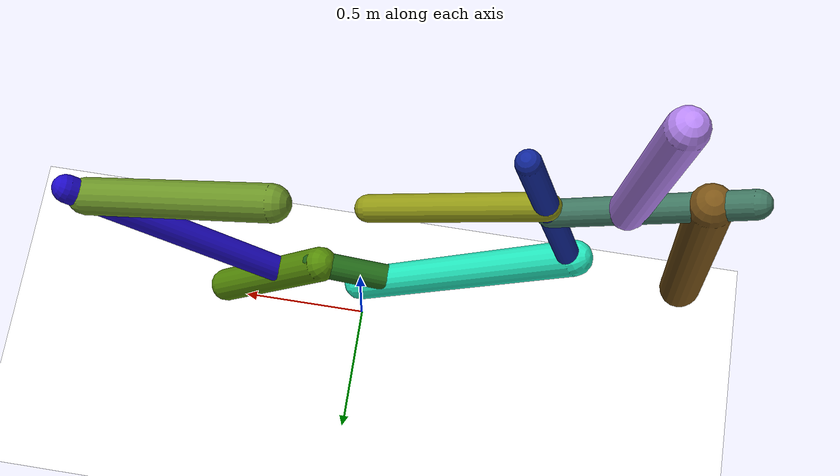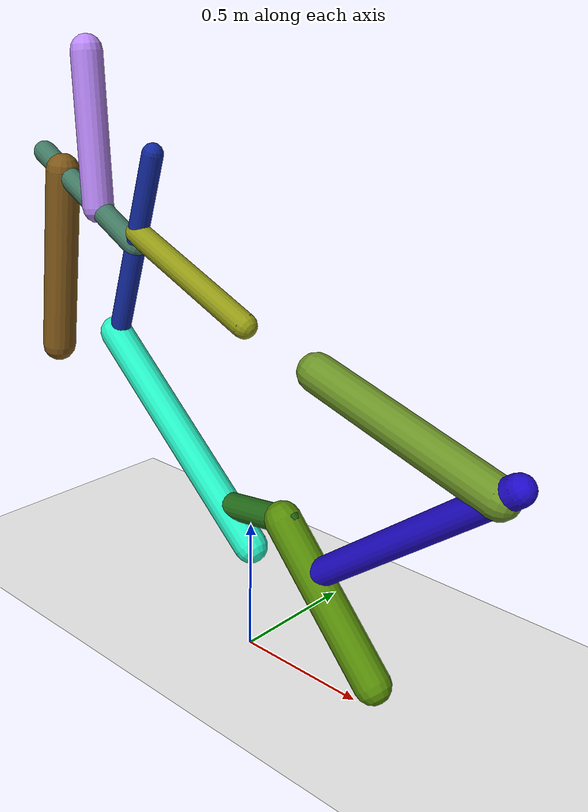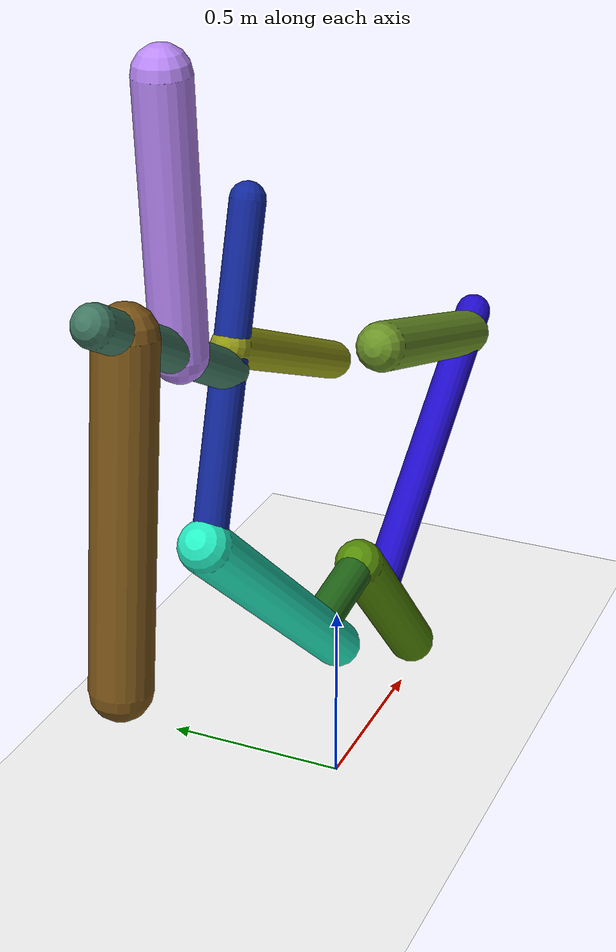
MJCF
<mujoco model="morphology">
  <option timestep="0.01"/>
  <default>
    <default class="/"/>
    <default class="0/"/>
    <default class="0/1/"/>
    <default class="0/1/2/"/>
    <default class="0/1/2/3/"/>
    <default class="0/1/2/3/4/"/>
    <default class="0/5/"/>
    <default class="0/5/6/"/>
    <default class="0/5/7/"/>
    <default class="0/5/7/8/"/>
    <default class="0/5/7/9/"/>
  </default>
  <asset>
    <texture name="texplane" type="2d" builtin="checker" rgb1="0.10000000000000001 0.20000000000000001 0.29999999999999999" rgb2="0.20000000000000001 0.29999999999999999 0.40000000000000002" width="300" height="300"/>
    <material name="MatPlane" class="/" texture="texplane" texrepeat="20 20" specular="1" shininess="1" reflectance="0.5"/>
  </asset>
  <worldbody>
    <light name="//unnamed_light_0" class="/" directional="true" pos="0 0 1.5" dir="0 0 -1.3" cutoff="100" exponent="1" diffuse="1 1 1" specular="0.10000000000000001 0.10000000000000001 0.10000000000000001"/>
    <geom name="ground" class="/" type="plane" size="15 15 0.5" material="MatPlane" rgba="1 1 1 1"/>
    <site name="body" class="/" size="9.9999999999999995e-07 9.9999999999999995e-07 9.9999999999999995e-07" pos="0 0 0.41095951795578001"/>
    <body pos="0 0 0.41095951795578001" name="0/">
      <joint name="0/rootx/" class="/" type="slide" axis="1 0 0" limited="false" stiffness="0" armature="0" damping="0"/>
      <joint name="0/rootz/" class="/" type="slide" axis="0 0 1" limited="false" stiffness="0" armature="0" damping="0"/>
      <joint name="0/rooty/" class="/" type="hinge" axis="0 1 0" limited="false" stiffness="0" armature="0" damping="0"/>
      <geom name="0/geom" class="0/" type="capsule" contype="1" conaffinity="1" condim="3" size="0.062956500481664665" rgba="0.14113276358911919 0.93089905258874517 0.76350924336121073 1" friction="0.59999999999999998 0.10000000000000001 0.10000000000000001" fromto="0 0 0 -0.74456022781224074 0 0.66722961272208714"/>
      <site name="0/end0" class="0/" size="0.0050000000000000001" pos="-0.74456022781224074 0 0.66722961272208714"/>
      <site name="0/attach1" class="0/" size="9.9999999999999995e-07 9.9999999999999995e-07 9.9999999999999995e-07" pos="-0.13861695404890692 0 0.12422008739109147"/>
      <body pos="-0.13861695404890692 0 0.12422008739109147" name="0/1/">
        <joint name="0/1/joint/" class="0/" type="hinge" axis="0 1 0" limited="true" range="-69.483749315230654 69.483749315230654"/>
        <geom name="0/1/geom" class="0/1/" type="capsule" contype="1" conaffinity="1" condim="3" size="0.05043938425670335" rgba="0.13326937277816187 0.4118402598487183 0.095656662221314637 1" friction="0.59999999999999998 0.10000000000000001 0.10000000000000001" fromto="0 0 0 0.31608144088195989 0 0.043691357026150235"/>
        <site name="0/1/end1" class="0/1/" size="0.0050000000000000001" pos="0.31608144088195989 0 0.043691357026150235"/>
        <site name="0/1/attach2" class="0/1/" size="9.9999999999999995e-07 9.9999999999999995e-07 9.9999999999999995e-07" pos="0.29413654741688255 0 0.040657954708670958"/>
        <body pos="0.29413654741688255 0 0.040657954708670958" name="0/1/2/">
          <joint name="0/1/2/joint/" class="0/1/" type="hinge" axis="0 1 0" limited="true" range="-46.087578845522337 46.087578845522337"/>
          <geom name="0/1/2/geom" class="0/1/2/" type="capsule" contype="1" conaffinity="1" condim="3" size="0.067539475685437778" rgba="0.33038472623242643 0.54258951318476056 0.027749723382355151 1" friction="0.59999999999999998 0.10000000000000001 0.10000000000000001" fromto="0 0 0 0.42060808590088183 0 -0.47583756441670844"/>
          <site name="0/1/2/end2" class="0/1/2/" size="0.0050000000000000001" pos="0.42060808590088183 0 -0.47583756441670844"/>
          <site name="0/1/2/attach3" class="0/1/2/" size="9.9999999999999995e-07 9.9999999999999995e-07 9.9999999999999995e-07" pos="0.14672000902209775 0 -0.16598561483842864"/>
          <body pos="0.14672000902209775 0 -0.16598561483842864" name="0/1/2/3/">
            <geom name="0/1/2/3/geom" class="0/1/2/3/" type="capsule" contype="1" conaffinity="1" condim="3" size="0.051471744362881544" rgba="0.11895930715346126 0.037078763212451848 0.77756299366759907 1" friction="0.59999999999999998 0.10000000000000001 0.10000000000000001" fromto="0 0 0 0.7488762877547126 0 0.58058487383785207"/>
            <site name="0/1/2/3/end3" class="0/1/2/3/" size="0.0050000000000000001" pos="0.7488762877547126 0 0.58058487383785207"/>
            <site name="0/1/2/3/attach4" class="0/1/2/3/" size="9.9999999999999995e-07 9.9999999999999995e-07 9.9999999999999995e-07" pos="0.68835283822233773 0 0.53366257186947286"/>
            <body pos="0.68835283822233773 0 0.53366257186947286" name="0/1/2/3/4/">
              <joint name="0/1/2/3/4/joint/" class="0/1/2/3/" type="hinge" axis="0 1 0" limited="true" range="-58.316595413610948 58.316595413610948"/>
              <geom name="0/1/2/3/4/geom" class="0/1/2/3/4/" type="capsule" contype="1" conaffinity="1" condim="3" size="0.06802640457381734" rgba="0.41581900036230846 0.57206715845312039 0.14804160619001394 1" friction="0.59999999999999998 0.10000000000000001 0.10000000000000001" fromto="0 0 0 -0.69509185748097968 0 0.2158043833467953"/>
              <site name="0/1/2/3/4/end4" class="0/1/2/3/4/" size="0.0050000000000000001" pos="-0.69509185748097968 0 0.2158043833467953"/>
            </body>
          </body>
        </body>
      </body>
      <site name="0/attach5" class="0/" size="9.9999999999999995e-07 9.9999999999999995e-07 9.9999999999999995e-07" pos="-0.7300437467174532 0 0.65422082485354538"/>
      <body pos="-0.7300437467174532 0 0.65422082485354538" name="0/5/">
        <joint name="0/5/joint/" class="0/" type="hinge" axis="0 1 0" limited="true" range="-45.287361015347216 45.287361015347216"/>
        <geom name="0/5/geom" class="0/5/" type="capsule" contype="1" conaffinity="1" condim="3" size="0.04065705984360786" rgba="0.066923739370816082 0.15423892872766465 0.61068678557843459 1" friction="0.59999999999999998 0.10000000000000001 0.10000000000000001" fromto="0 0 0 0.23340034871429105 0 0.73174038397981533"/>
        <site name="0/5/end5" class="0/5/" size="0.0050000000000000001" pos="0.23340034871429105 0 0.73174038397981533"/>
        <site name="0/5/attach6" class="0/5/" size="9.9999999999999995e-07 9.9999999999999995e-07 9.9999999999999995e-07" pos="0.13739510875244282 0 0.43075149711335931"/>
        <body pos="0.13739510875244282 0 0.43075149711335931" name="0/5/6/">
          <joint name="0/5/6/joint/" class="0/5/" type="hinge" axis="0 1 0" limited="true" range="-34.045308597937812 34.045308597937812"/>
          <geom name="0/5/6/geom" class="0/5/6/" type="capsule" contype="1" conaffinity="1" condim="3" size="0.046752838327639122" rgba="0.56820923546314139 0.59248051290726622 0.080254539839291206 1" friction="0.59999999999999998 0.10000000000000001 0.10000000000000001" fromto="0 0 0 0.55736000341652114 0 -0.24630869909613184"/>
          <site name="0/5/6/end6" class="0/5/6/" size="0.0050000000000000001" pos="0.55736000341652114 0 -0.24630869909613184"/>
        </body>
        <site name="0/5/attach7" class="0/5/" size="9.9999999999999995e-07 9.9999999999999995e-07 9.9999999999999995e-07" pos="0.12109053771947906 0 0.37963455091337034"/>
        <body pos="0.12109053771947906 0 0.37963455091337034" name="0/5/7/">
          <joint name="0/5/7/joint/" class="0/5/" type="hinge" axis="0 1 0" limited="true" range="-35.403142510036936 35.403142510036936"/>
          <geom name="0/5/7/geom" class="0/5/7/" type="capsule" contype="1" conaffinity="1" condim="3" size="0.044941510514618879" rgba="0.24830036521526155 0.46287274864493766 0.37863077082575791 1" friction="0.59999999999999998 0.10000000000000001 0.10000000000000001" fromto="0 0 0 -0.55057936925341533 0 0.30423180972152997"/>
          <site name="0/5/7/end7" class="0/5/7/" size="0.0050000000000000001" pos="-0.55057936925341533 0 0.30423180972152997"/>
          <site name="0/5/7/attach8" class="0/5/7/" size="9.9999999999999995e-07 9.9999999999999995e-07 9.9999999999999995e-07" pos="-0.43587138116708196 0 0.24084799849674271"/>
          <body pos="-0.43587138116708196 0 0.24084799849674271" name="0/5/7/8/">
            <joint name="0/5/7/8/joint/" class="0/5/7/" type="hinge" axis="0 1 0" limited="true" range="-39.06052761185169 39.06052761185169"/>
            <geom name="0/5/7/8/geom" class="0/5/7/8/" type="capsule" contype="1" conaffinity="1" condim="3" size="0.068438861889555294" rgba="0.48609404842897019 0.33447265958086114 0.09291461776012333 1" friction="0.59999999999999998 0.10000000000000001 0.10000000000000001" fromto="0 0 0 -0.091235284509122883 0 -0.74386201670365049"/>
            <site name="0/5/7/8/end8" class="0/5/7/8/" size="0.0050000000000000001" pos="-0.091235284509122883 0 -0.74386201670365049"/>
          </body>
          <site name="0/5/7/attach9" class="0/5/7/" size="9.9999999999999995e-07 9.9999999999999995e-07 9.9999999999999995e-07" pos="-0.21871885980306752 0 0.12085675245759139"/>
          <body pos="-0.21871885980306752 0 0.12085675245759139" name="0/5/7/9/">
            <joint name="0/5/7/9/joint/" class="0/5/7/" type="hinge" axis="0 1 0" limited="true" range="-60.192491868866256 60.192491868866256"/>
            <geom name="0/5/7/9/geom" class="0/5/7/9/" type="capsule" contype="1" conaffinity="1" condim="3" size="0.061325738251511677" rgba="0.72216500143359108 0.52905607885697092 0.96733401266308006 1" friction="0.59999999999999998 0.10000000000000001 0.10000000000000001" fromto="0 0 0 -0.030817839511678269 0 0.58221652868647378"/>
            <site name="0/5/7/9/end9" class="0/5/7/9/" size="0.0050000000000000001" pos="-0.030817839511678269 0 0.58221652868647378"/>
          </body>
        </body>
      </body>
      <camera name="0/side" class="0/" mode="trackcom" pos="0.40000000000000002 -4 0.20000000000000001" quat="0.70699999999999996 0.70699999999999996 0 0"/>
    </body>
  </worldbody>
  <actuator>
    <motor name="0/1/motor" class="0/1/" ctrllimited="true" ctrlrange="-1 1" gear="50" joint="0/1/joint/"/>
    <motor name="0/1/2/motor" class="0/1/2/" ctrllimited="true" ctrlrange="-1 1" gear="50" joint="0/1/2/joint/"/>
    <motor name="0/1/2/3/4/motor" class="0/1/2/3/4/" ctrllimited="true" ctrlrange="-1 1" gear="78" joint="0/1/2/3/4/joint/"/>
    <motor name="0/5/motor" class="0/5/" ctrllimited="true" ctrlrange="-1 1" gear="67" joint="0/5/joint/"/>
    <motor name="0/5/6/motor" class="0/5/6/" ctrllimited="true" ctrlrange="-1 1" gear="77" joint="0/5/6/joint/"/>
    <motor name="0/5/7/motor" class="0/5/7/" ctrllimited="true" ctrlrange="-1 1" gear="73" joint="0/5/7/joint/"/>
    <motor name="0/5/7/8/motor" class="0/5/7/8/" ctrllimited="true" ctrlrange="-1 1" gear="86" joint="0/5/7/8/joint/"/>
    <motor name="0/5/7/9/motor" class="0/5/7/9/" ctrllimited="true" ctrlrange="-1 1" gear="56" joint="0/5/7/9/joint/"/>
  </actuator>
  <sensor>
    <subtreelinvel name="velocity" body="0/"/>
  </sensor>
</mujoco>
